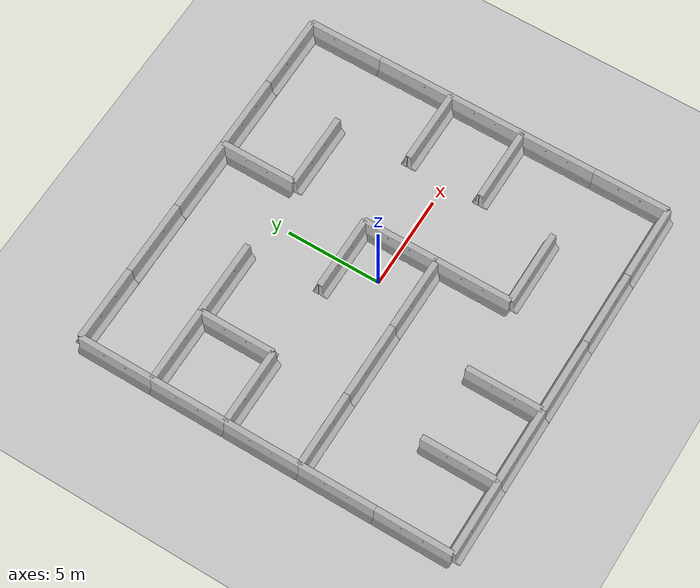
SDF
<sdf version="1.7">
 <world name="default">
  <light name="sun" type="directional">
   <pose>0 0 10 0 -0 0</pose>
   <diffuse>0.8 0.8 0.8 1</diffuse>
   <specular>0.2 0.2 0.2 1</specular>
   <attenuation>
    <range>1000</range>
    <constant>0.9</constant>
    <linear>0.01</linear>
    <quadratic>0.001</quadratic>
   </attenuation>
   <direction>-0.5 0.1 -0.9</direction>
   <spot><inner_angle>0</inner_angle><outer_angle>0</outer_angle><falloff>0</falloff></spot>
  </light>
  <model name="ground_plane">
   <static>1</static>
   <link name="link">
    <collision name="collision">
     <geometry><plane><normal>0 0 1</normal><size>100 100</size></plane></geometry>
     <surface><friction><ode><mu>100</mu><mu2>50</mu2></ode></friction></surface>
    </collision>
    <visual name="visual">
     <cast_shadows>0</cast_shadows>
     <geometry><plane><normal>0 0 1</normal><size>100 100</size></plane></geometry>
     <material>
      <script><uri>file://media/materials/scripts/gazebo.material</uri><name>Gazebo/Grey</name></script>
     </material>
    </visual>
   </link>
  </model>
  <gravity>0 0 -9.8</gravity>
  <magnetic_field>6e-06 2.3e-05 -4.2e-05</magnetic_field>
  <atmosphere type="adiabatic"/>
  <physics type="ode">
   <max_step_size>0.001</max_step_size>
   <real_time_factor>1</real_time_factor>
   <real_time_update_rate>1000</real_time_update_rate>
  </physics>
  <scene><ambient>0.4 0.4 0.4 1</ambient><background>0.7 0.7 0.7 1</background><shadows>1</shadows></scene>
  <spherical_coordinates>
   <surface_model>EARTH_WGS84</surface_model>
   <latitude_deg>0</latitude_deg>
   <longitude_deg>0</longitude_deg>
   <elevation>0</elevation>
   <heading_deg>0</heading_deg>
  </spherical_coordinates>
  <model name="jersey_barrier_clone_0">
   <static>1</static>
   <link name="link">
    <visual name="visual">
     <geometry><mesh><uri>model://jersey_barrier/meshes/jersey_barrier.dae</uri></mesh></geometry>
    </visual>
    <collision name="upright">
     <pose>0 0 0.5715 0 -0 0</pose>
     <geometry><box><size>4.06542 0.3063 1.143</size></box></geometry>
    </collision>
    <collision name="base">
     <pose>0 0 0.032258 0 -0 0</pose>
     <geometry><box><size>4.06542 0.8107 0.064516</size></box></geometry>
    </collision>
    <collision name="base2">
     <pose>0 0 0.1 0 -0 0</pose>
     <geometry><box><size>4.06542 0.65 0.1</size></box></geometry>
    </collision>
    <collision name="base3">
     <pose>0 0 0.2 0 -0 0</pose>
     <geometry><box><size>4.06542 0.5 0.1</size></box></geometry>
    </collision>
    <collision name="left-angle">
     <pose>0 -0.224 0.2401 0.9 -0 0</pose>
     <geometry><box><size>4.06542 0.5 0.064516</size></box></geometry>
    </collision>
    <collision name="right-angle">
     <pose>0 0.224 0.2401 -0.9 0 0</pose>
     <geometry><box><size>4.06542 0.5 0.064516</size></box></geometry>
    </collision>
   </link>
   <pose>8 -2 0 0 -0 0</pose>
  </model>
  <model name="jersey_barrier_clone_clone_0">
   <static>1</static>
   <link name="link">
    <visual name="visual">
     <geometry><mesh><uri>model://jersey_barrier/meshes/jersey_barrier.dae</uri></mesh></geometry>
    </visual>
    <collision name="upright">
     <pose>0 0 0.5715 0 -0 0</pose>
     <geometry><box><size>4.06542 0.3063 1.143</size></box></geometry>
    </collision>
    <collision name="base">
     <pose>0 0 0.032258 0 -0 0</pose>
     <geometry><box><size>4.06542 0.8107 0.064516</size></box></geometry>
    </collision>
    <collision name="base2">
     <pose>0 0 0.1 0 -0 0</pose>
     <geometry><box><size>4.06542 0.65 0.1</size></box></geometry>
    </collision>
    <collision name="base3">
     <pose>0 0 0.2 0 -0 0</pose>
     <geometry><box><size>4.06542 0.5 0.1</size></box></geometry>
    </collision>
    <collision name="left-angle">
     <pose>0 -0.224 0.2401 0.9 -0 0</pose>
     <geometry><box><size>4.06542 0.5 0.064516</size></box></geometry>
    </collision>
    <collision name="right-angle">
     <pose>0 0.224 0.2401 -0.9 0 0</pose>
     <geometry><box><size>4.06542 0.5 0.064516</size></box></geometry>
    </collision>
   </link>
   <pose>0 -2 0 0 -0 0</pose>
  </model>
  <model name="jersey_barrier_clone_clone_clone_1">
   <static>1</static>
   <link name="link">
    <visual name="visual">
     <geometry><mesh><uri>model://jersey_barrier/meshes/jersey_barrier.dae</uri></mesh></geometry>
    </visual>
    <collision name="upright">
     <pose>0 0 0.5715 0 -0 0</pose>
     <geometry><box><size>4.06542 0.3063 1.143</size></box></geometry>
    </collision>
    <collision name="base">
     <pose>0 0 0.032258 0 -0 0</pose>
     <geometry><box><size>4.06542 0.8107 0.064516</size></box></geometry>
    </collision>
    <collision name="base2">
     <pose>0 0 0.1 0 -0 0</pose>
     <geometry><box><size>4.06542 0.65 0.1</size></box></geometry>
    </collision>
    <collision name="base3">
     <pose>0 0 0.2 0 -0 0</pose>
     <geometry><box><size>4.06542 0.5 0.1</size></box></geometry>
    </collision>
    <collision name="left-angle">
     <pose>0 -0.224 0.2401 0.9 -0 0</pose>
     <geometry><box><size>4.06542 0.5 0.064516</size></box></geometry>
    </collision>
    <collision name="right-angle">
     <pose>0 0.224 0.2401 -0.9 0 0</pose>
     <geometry><box><size>4.06542 0.5 0.064516</size></box></geometry>
    </collision>
   </link>
   <pose>10 0 0 0 -0 1.5708</pose>
  </model>
  <model name="jersey_barrier_clone_clone_clone_2">
   <static>1</static>
   <link name="link">
    <visual name="visual">
     <geometry><mesh><uri>model://jersey_barrier/meshes/jersey_barrier.dae</uri></mesh></geometry>
    </visual>
    <collision name="upright">
     <pose>0 0 0.5715 0 -0 0</pose>
     <geometry><box><size>4.06542 0.3063 1.143</size></box></geometry>
    </collision>
    <collision name="base">
     <pose>0 0 0.032258 0 -0 0</pose>
     <geometry><box><size>4.06542 0.8107 0.064516</size></box></geometry>
    </collision>
    <collision name="base2">
     <pose>0 0 0.1 0 -0 0</pose>
     <geometry><box><size>4.06542 0.65 0.1</size></box></geometry>
    </collision>
    <collision name="base3">
     <pose>0 0 0.2 0 -0 0</pose>
     <geometry><box><size>4.06542 0.5 0.1</size></box></geometry>
    </collision>
    <collision name="left-angle">
     <pose>0 -0.224 0.2401 0.9 -0 0</pose>
     <geometry><box><size>4.06542 0.5 0.064516</size></box></geometry>
    </collision>
    <collision name="right-angle">
     <pose>0 0.224 0.2401 -0.9 0 0</pose>
     <geometry><box><size>4.06542 0.5 0.064516</size></box></geometry>
    </collision>
   </link>
   <pose>10 4 0 0 -0 1.5708</pose>
  </model>
  <model name="jersey_barrier_clone_clone_clone_3">
   <static>1</static>
   <link name="link">
    <visual name="visual">
     <geometry><mesh><uri>model://jersey_barrier/meshes/jersey_barrier.dae</uri></mesh></geometry>
    </visual>
    <collision name="upright">
     <pose>0 0 0.5715 0 -0 0</pose>
     <geometry><box><size>4.06542 0.3063 1.143</size></box></geometry>
    </collision>
    <collision name="base">
     <pose>0 0 0.032258 0 -0 0</pose>
     <geometry><box><size>4.06542 0.8107 0.064516</size></box></geometry>
    </collision>
    <collision name="base2">
     <pose>0 0 0.1 0 -0 0</pose>
     <geometry><box><size>4.06542 0.65 0.1</size></box></geometry>
    </collision>
    <collision name="base3">
     <pose>0 0 0.2 0 -0 0</pose>
     <geometry><box><size>4.06542 0.5 0.1</size></box></geometry>
    </collision>
    <collision name="left-angle">
     <pose>0 -0.224 0.2401 0.9 -0 0</pose>
     <geometry><box><size>4.06542 0.5 0.064516</size></box></geometry>
    </collision>
    <collision name="right-angle">
     <pose>0 0.224 0.2401 -0.9 0 0</pose>
     <geometry><box><size>4.06542 0.5 0.064516</size></box></geometry>
    </collision>
   </link>
   <pose>10 8 0 0 -0 1.5708</pose>
  </model>
  <model name="jersey_barrier_clone_3_clone">
   <static>1</static>
   <link name="link">
    <visual name="visual">
     <geometry><mesh><uri>model://jersey_barrier/meshes/jersey_barrier.dae</uri></mesh></geometry>
    </visual>
    <collision name="upright">
     <pose>0 0 0.5715 0 -0 0</pose>
     <geometry><box><size>4.06542 0.3063 1.143</size></box></geometry>
    </collision>
    <collision name="base">
     <pose>0 0 0.032258 0 -0 0</pose>
     <geometry><box><size>4.06542 0.8107 0.064516</size></box></geometry>
    </collision>
    <collision name="base2">
     <pose>0 0 0.1 0 -0 0</pose>
     <geometry><box><size>4.06542 0.65 0.1</size></box></geometry>
    </collision>
    <collision name="base3">
     <pose>0 0 0.2 0 -0 0</pose>
     <geometry><box><size>4.06542 0.5 0.1</size></box></geometry>
    </collision>
    <collision name="left-angle">
     <pose>0 -0.224 0.2401 0.9 -0 0</pose>
     <geometry><box><size>4.06542 0.5 0.064516</size></box></geometry>
    </collision>
    <collision name="right-angle">
     <pose>0 0.224 0.2401 -0.9 0 0</pose>
     <geometry><box><size>4.06542 0.5 0.064516</size></box></geometry>
    </collision>
   </link>
   <pose>0 10 0 0 -0 0</pose>
  </model>
  <model name="jersey_barrier_clone_3_clone_0">
   <static>1</static>
   <link name="link">
    <visual name="visual">
     <geometry><mesh><uri>model://jersey_barrier/meshes/jersey_barrier.dae</uri></mesh></geometry>
    </visual>
    <collision name="upright">
     <pose>0 0 0.5715 0 -0 0</pose>
     <geometry><box><size>4.06542 0.3063 1.143</size></box></geometry>
    </collision>
    <collision name="base">
     <pose>0 0 0.032258 0 -0 0</pose>
     <geometry><box><size>4.06542 0.8107 0.064516</size></box></geometry>
    </collision>
    <collision name="base2">
     <pose>0 0 0.1 0 -0 0</pose>
     <geometry><box><size>4.06542 0.65 0.1</size></box></geometry>
    </collision>
    <collision name="base3">
     <pose>0 0 0.2 0 -0 0</pose>
     <geometry><box><size>4.06542 0.5 0.1</size></box></geometry>
    </collision>
    <collision name="left-angle">
     <pose>0 -0.224 0.2401 0.9 -0 0</pose>
     <geometry><box><size>4.06542 0.5 0.064516</size></box></geometry>
    </collision>
    <collision name="right-angle">
     <pose>0 0.224 0.2401 -0.9 0 0</pose>
     <geometry><box><size>4.06542 0.5 0.064516</size></box></geometry>
    </collision>
   </link>
   <pose>4 10 0 0 -0 0</pose>
  </model>
  <model name="jersey_barrier_clone_3_clone_1">
   <static>1</static>
   <link name="link">
    <visual name="visual">
     <geometry><mesh><uri>model://jersey_barrier/meshes/jersey_barrier.dae</uri></mesh></geometry>
    </visual>
    <collision name="upright">
     <pose>0 0 0.5715 0 -0 0</pose>
     <geometry><box><size>4.06542 0.3063 1.143</size></box></geometry>
    </collision>
    <collision name="base">
     <pose>0 0 0.032258 0 -0 0</pose>
     <geometry><box><size>4.06542 0.8107 0.064516</size></box></geometry>
    </collision>
    <collision name="base2">
     <pose>0 0 0.1 0 -0 0</pose>
     <geometry><box><size>4.06542 0.65 0.1</size></box></geometry>
    </collision>
    <collision name="base3">
     <pose>0 0 0.2 0 -0 0</pose>
     <geometry><box><size>4.06542 0.5 0.1</size></box></geometry>
    </collision>
    <collision name="left-angle">
     <pose>0 -0.224 0.2401 0.9 -0 0</pose>
     <geometry><box><size>4.06542 0.5 0.064516</size></box></geometry>
    </collision>
    <collision name="right-angle">
     <pose>0 0.224 0.2401 -0.9 0 0</pose>
     <geometry><box><size>4.06542 0.5 0.064516</size></box></geometry>
    </collision>
   </link>
   <pose>8 10 0 0 -0 0</pose>
  </model>
  <model name="jersey_barrier_clone_clone_0_clone">
   <static>1</static>
   <link name="link">
    <visual name="visual">
     <geometry><mesh><uri>model://jersey_barrier/meshes/jersey_barrier.dae</uri></mesh></geometry>
    </visual>
    <collision name="upright">
     <pose>0 0 0.5715 0 -0 0</pose>
     <geometry><box><size>4.06542 0.3063 1.143</size></box></geometry>
    </collision>
    <collision name="base">
     <pose>0 0 0.032258 0 -0 0</pose>
     <geometry><box><size>4.06542 0.8107 0.064516</size></box></geometry>
    </collision>
    <collision name="base2">
     <pose>0 0 0.1 0 -0 0</pose>
     <geometry><box><size>4.06542 0.65 0.1</size></box></geometry>
    </collision>
    <collision name="base3">
     <pose>0 0 0.2 0 -0 0</pose>
     <geometry><box><size>4.06542 0.5 0.1</size></box></geometry>
    </collision>
    <collision name="left-angle">
     <pose>0 -0.224 0.2401 0.9 -0 0</pose>
     <geometry><box><size>4.06542 0.5 0.064516</size></box></geometry>
    </collision>
    <collision name="right-angle">
     <pose>0 0.224 0.2401 -0.9 0 0</pose>
     <geometry><box><size>4.06542 0.5 0.064516</size></box></geometry>
    </collision>
   </link>
   <pose>0 2 0 0 -0 0</pose>
  </model>
  <model name="jersey_barrier_clone_clone_clone_4">
   <static>1</static>
   <link name="link">
    <visual name="visual">
     <geometry><mesh><uri>model://jersey_barrier/meshes/jersey_barrier.dae</uri></mesh></geometry>
    </visual>
    <collision name="upright">
     <pose>0 0 0.5715 0 -0 0</pose>
     <geometry><box><size>4.06542 0.3063 1.143</size></box></geometry>
    </collision>
    <collision name="base">
     <pose>0 0 0.032258 0 -0 0</pose>
     <geometry><box><size>4.06542 0.8107 0.064516</size></box></geometry>
    </collision>
    <collision name="base2">
     <pose>0 0 0.1 0 -0 0</pose>
     <geometry><box><size>4.06542 0.65 0.1</size></box></geometry>
    </collision>
    <collision name="base3">
     <pose>0 0 0.2 0 -0 0</pose>
     <geometry><box><size>4.06542 0.5 0.1</size></box></geometry>
    </collision>
    <collision name="left-angle">
     <pose>0 -0.224 0.2401 0.9 -0 0</pose>
     <geometry><box><size>4.06542 0.5 0.064516</size></box></geometry>
    </collision>
    <collision name="right-angle">
     <pose>0 0.224 0.2401 -0.9 0 0</pose>
     <geometry><box><size>4.06542 0.5 0.064516</size></box></geometry>
    </collision>
   </link>
   <pose>2 0 0 0 -0 1.5708</pose>
  </model>
  <model name="jersey_barrier_clone_clone_clone_8">
   <static>1</static>
   <link name="link">
    <visual name="visual">
     <geometry><mesh><uri>model://jersey_barrier/meshes/jersey_barrier.dae</uri></mesh></geometry>
    </visual>
    <collision name="upright">
     <pose>0 0 0.5715 0 -0 0</pose>
     <geometry><box><size>4.06542 0.3063 1.143</size></box></geometry>
    </collision>
    <collision name="base">
     <pose>0 0 0.032258 0 -0 0</pose>
     <geometry><box><size>4.06542 0.8107 0.064516</size></box></geometry>
    </collision>
    <collision name="base2">
     <pose>0 0 0.1 0 -0 0</pose>
     <geometry><box><size>4.06542 0.65 0.1</size></box></geometry>
    </collision>
    <collision name="base3">
     <pose>0 0 0.2 0 -0 0</pose>
     <geometry><box><size>4.06542 0.5 0.1</size></box></geometry>
    </collision>
    <collision name="left-angle">
     <pose>0 -0.224 0.2401 0.9 -0 0</pose>
     <geometry><box><size>4.06542 0.5 0.064516</size></box></geometry>
    </collision>
    <collision name="right-angle">
     <pose>0 0.224 0.2401 -0.9 0 0</pose>
     <geometry><box><size>4.06542 0.5 0.064516</size></box></geometry>
    </collision>
   </link>
   <pose>2 8 0 0 -0 1.5708</pose>
  </model>
  <model name="jersey_barrier_clone_clone_0_clone_clone_0">
   <static>1</static>
   <link name="link">
    <visual name="visual">
     <geometry><mesh><uri>model://jersey_barrier/meshes/jersey_barrier.dae</uri></mesh></geometry>
    </visual>
    <collision name="upright">
     <pose>0 0 0.5715 0 -0 0</pose>
     <geometry><box><size>4.06542 0.3063 1.143</size></box></geometry>
    </collision>
    <collision name="base">
     <pose>0 0 0.032258 0 -0 0</pose>
     <geometry><box><size>4.06542 0.8107 0.064516</size></box></geometry>
    </collision>
    <collision name="base2">
     <pose>0 0 0.1 0 -0 0</pose>
     <geometry><box><size>4.06542 0.65 0.1</size></box></geometry>
    </collision>
    <collision name="base3">
     <pose>0 0 0.2 0 -0 0</pose>
     <geometry><box><size>4.06542 0.5 0.1</size></box></geometry>
    </collision>
    <collision name="left-angle">
     <pose>0 -0.224 0.2401 0.9 -0 0</pose>
     <geometry><box><size>4.06542 0.5 0.064516</size></box></geometry>
    </collision>
    <collision name="right-angle">
     <pose>0 0.224 0.2401 -0.9 0 0</pose>
     <geometry><box><size>4.06542 0.5 0.064516</size></box></geometry>
    </collision>
   </link>
   <pose>4 6 0 0 -0 0</pose>
  </model>
  <model name="jersey_barrier_clone_clone_0_clone_clone_3">
   <static>1</static>
   <link name="link">
    <visual name="visual">
     <geometry><mesh><uri>model://jersey_barrier/meshes/jersey_barrier.dae</uri></mesh></geometry>
    </visual>
    <collision name="upright">
     <pose>0 0 0.5715 0 -0 0</pose>
     <geometry><box><size>4.06542 0.3063 1.143</size></box></geometry>
    </collision>
    <collision name="base">
     <pose>0 0 0.032258 0 -0 0</pose>
     <geometry><box><size>4.06542 0.8107 0.064516</size></box></geometry>
    </collision>
    <collision name="base2">
     <pose>0 0 0.1 0 -0 0</pose>
     <geometry><box><size>4.06542 0.65 0.1</size></box></geometry>
    </collision>
    <collision name="base3">
     <pose>0 0 0.2 0 -0 0</pose>
     <geometry><box><size>4.06542 0.5 0.1</size></box></geometry>
    </collision>
    <collision name="left-angle">
     <pose>0 -0.224 0.2401 0.9 -0 0</pose>
     <geometry><box><size>4.06542 0.5 0.064516</size></box></geometry>
    </collision>
    <collision name="right-angle">
     <pose>0 0.224 0.2401 -0.9 0 0</pose>
     <geometry><box><size>4.06542 0.5 0.064516</size></box></geometry>
    </collision>
   </link>
   <pose>8 2 0 0 -0 0</pose>
  </model>
  <model name="jersey_barrier_clone_clone_0_clone_clone_5">
   <static>1</static>
   <link name="link">
    <visual name="visual">
     <geometry><mesh><uri>model://jersey_barrier/meshes/jersey_barrier.dae</uri></mesh></geometry>
    </visual>
    <collision name="upright">
     <pose>0 0 0.5715 0 -0 0</pose>
     <geometry><box><size>4.06542 0.3063 1.143</size></box></geometry>
    </collision>
    <collision name="base">
     <pose>0 0 0.032258 0 -0 0</pose>
     <geometry><box><size>4.06542 0.8107 0.064516</size></box></geometry>
    </collision>
    <collision name="base2">
     <pose>0 0 0.1 0 -0 0</pose>
     <geometry><box><size>4.06542 0.65 0.1</size></box></geometry>
    </collision>
    <collision name="base3">
     <pose>0 0 0.2 0 -0 0</pose>
     <geometry><box><size>4.06542 0.5 0.1</size></box></geometry>
    </collision>
    <collision name="left-angle">
     <pose>0 -0.224 0.2401 0.9 -0 0</pose>
     <geometry><box><size>4.06542 0.5 0.064516</size></box></geometry>
    </collision>
    <collision name="right-angle">
     <pose>0 0.224 0.2401 -0.9 0 0</pose>
     <geometry><box><size>4.06542 0.5 0.064516</size></box></geometry>
    </collision>
   </link>
   <pose>-4 -2 0 0 -0 0</pose>
  </model>
  <model name="jersey_barrier_clone_clone_0_clone_clone_6">
   <static>1</static>
   <link name="link">
    <visual name="visual">
     <geometry><mesh><uri>model://jersey_barrier/meshes/jersey_barrier.dae</uri></mesh></geometry>
    </visual>
    <collision name="upright">
     <pose>0 0 0.5715 0 -0 0</pose>
     <geometry><box><size>4.06542 0.3063 1.143</size></box></geometry>
    </collision>
    <collision name="base">
     <pose>0 0 0.032258 0 -0 0</pose>
     <geometry><box><size>4.06542 0.8107 0.064516</size></box></geometry>
    </collision>
    <collision name="base2">
     <pose>0 0 0.1 0 -0 0</pose>
     <geometry><box><size>4.06542 0.65 0.1</size></box></geometry>
    </collision>
    <collision name="base3">
     <pose>0 0 0.2 0 -0 0</pose>
     <geometry><box><size>4.06542 0.5 0.1</size></box></geometry>
    </collision>
    <collision name="left-angle">
     <pose>0 -0.224 0.2401 0.9 -0 0</pose>
     <geometry><box><size>4.06542 0.5 0.064516</size></box></geometry>
    </collision>
    <collision name="right-angle">
     <pose>0 0.224 0.2401 -0.9 0 0</pose>
     <geometry><box><size>4.06542 0.5 0.064516</size></box></geometry>
    </collision>
   </link>
   <pose>-8 -2 0 0 -0 0</pose>
  </model>
  <model name="jersey_barrier_clone_clone_0_clone_clone_7">
   <static>1</static>
   <link name="link">
    <visual name="visual">
     <geometry><mesh><uri>model://jersey_barrier/meshes/jersey_barrier.dae</uri></mesh></geometry>
    </visual>
    <collision name="upright">
     <pose>0 0 0.5715 0 -0 0</pose>
     <geometry><box><size>4.06542 0.3063 1.143</size></box></geometry>
    </collision>
    <collision name="base">
     <pose>0 0 0.032258 0 -0 0</pose>
     <geometry><box><size>4.06542 0.8107 0.064516</size></box></geometry>
    </collision>
    <collision name="base2">
     <pose>0 0 0.1 0 -0 0</pose>
     <geometry><box><size>4.06542 0.65 0.1</size></box></geometry>
    </collision>
    <collision name="base3">
     <pose>0 0 0.2 0 -0 0</pose>
     <geometry><box><size>4.06542 0.5 0.1</size></box></geometry>
    </collision>
    <collision name="left-angle">
     <pose>0 -0.224 0.2401 0.9 -0 0</pose>
     <geometry><box><size>4.06542 0.5 0.064516</size></box></geometry>
    </collision>
    <collision name="right-angle">
     <pose>0 0.224 0.2401 -0.9 0 0</pose>
     <geometry><box><size>4.06542 0.5 0.064516</size></box></geometry>
    </collision>
   </link>
   <pose>-8 2 0 0 -0 0</pose>
  </model>
  <model name="jersey_barrier_clone_clone_0_clone_clone_8">
   <static>1</static>
   <link name="link">
    <visual name="visual">
     <geometry><mesh><uri>model://jersey_barrier/meshes/jersey_barrier.dae</uri></mesh></geometry>
    </visual>
    <collision name="upright">
     <pose>0 0 0.5715 0 -0 0</pose>
     <geometry><box><size>4.06542 0.3063 1.143</size></box></geometry>
    </collision>
    <collision name="base">
     <pose>0 0 0.032258 0 -0 0</pose>
     <geometry><box><size>4.06542 0.8107 0.064516</size></box></geometry>
    </collision>
    <collision name="base2">
     <pose>0 0 0.1 0 -0 0</pose>
     <geometry><box><size>4.06542 0.65 0.1</size></box></geometry>
    </collision>
    <collision name="base3">
     <pose>0 0 0.2 0 -0 0</pose>
     <geometry><box><size>4.06542 0.5 0.1</size></box></geometry>
    </collision>
    <collision name="left-angle">
     <pose>0 -0.224 0.2401 0.9 -0 0</pose>
     <geometry><box><size>4.06542 0.5 0.064516</size></box></geometry>
    </collision>
    <collision name="right-angle">
     <pose>0 0.224 0.2401 -0.9 0 0</pose>
     <geometry><box><size>4.06542 0.5 0.064516</size></box></geometry>
    </collision>
   </link>
   <pose>-4 6 0 0 -0 0</pose>
  </model>
  <model name="jersey_barrier_clone_clone_0_clone_clone_9">
   <static>1</static>
   <link name="link">
    <visual name="visual">
     <geometry><mesh><uri>model://jersey_barrier/meshes/jersey_barrier.dae</uri></mesh></geometry>
    </visual>
    <collision name="upright">
     <pose>0 0 0.5715 0 -0 0</pose>
     <geometry><box><size>4.06542 0.3063 1.143</size></box></geometry>
    </collision>
    <collision name="base">
     <pose>0 0 0.032258 0 -0 0</pose>
     <geometry><box><size>4.06542 0.8107 0.064516</size></box></geometry>
    </collision>
    <collision name="base2">
     <pose>0 0 0.1 0 -0 0</pose>
     <geometry><box><size>4.06542 0.65 0.1</size></box></geometry>
    </collision>
    <collision name="base3">
     <pose>0 0 0.2 0 -0 0</pose>
     <geometry><box><size>4.06542 0.5 0.1</size></box></geometry>
    </collision>
    <collision name="left-angle">
     <pose>0 -0.224 0.2401 0.9 -0 0</pose>
     <geometry><box><size>4.06542 0.5 0.064516</size></box></geometry>
    </collision>
    <collision name="right-angle">
     <pose>0 0.224 0.2401 -0.9 0 0</pose>
     <geometry><box><size>4.06542 0.5 0.064516</size></box></geometry>
    </collision>
   </link>
   <pose>-8 6 0 0 -0 0</pose>
  </model>
  <model name="jersey_barrier_clone_clone_0_clone_clone_10">
   <static>1</static>
   <link name="link">
    <visual name="visual">
     <geometry><mesh><uri>model://jersey_barrier/meshes/jersey_barrier.dae</uri></mesh></geometry>
    </visual>
    <collision name="upright">
     <pose>0 0 0.5715 0 -0 0</pose>
     <geometry><box><size>4.06542 0.3063 1.143</size></box></geometry>
    </collision>
    <collision name="base">
     <pose>0 0 0.032258 0 -0 0</pose>
     <geometry><box><size>4.06542 0.8107 0.064516</size></box></geometry>
    </collision>
    <collision name="base2">
     <pose>0 0 0.1 0 -0 0</pose>
     <geometry><box><size>4.06542 0.65 0.1</size></box></geometry>
    </collision>
    <collision name="base3">
     <pose>0 0 0.2 0 -0 0</pose>
     <geometry><box><size>4.06542 0.5 0.1</size></box></geometry>
    </collision>
    <collision name="left-angle">
     <pose>0 -0.224 0.2401 0.9 -0 0</pose>
     <geometry><box><size>4.06542 0.5 0.064516</size></box></geometry>
    </collision>
    <collision name="right-angle">
     <pose>0 0.224 0.2401 -0.9 0 0</pose>
     <geometry><box><size>4.06542 0.5 0.064516</size></box></geometry>
    </collision>
   </link>
   <pose>-4 10 0 0 -0 0</pose>
  </model>
  <model name="jersey_barrier_clone_clone_0_clone_clone_11">
   <static>1</static>
   <link name="link">
    <visual name="visual">
     <geometry><mesh><uri>model://jersey_barrier/meshes/jersey_barrier.dae</uri></mesh></geometry>
    </visual>
    <collision name="upright">
     <pose>0 0 0.5715 0 -0 0</pose>
     <geometry><box><size>4.06542 0.3063 1.143</size></box></geometry>
    </collision>
    <collision name="base">
     <pose>0 0 0.032258 0 -0 0</pose>
     <geometry><box><size>4.06542 0.8107 0.064516</size></box></geometry>
    </collision>
    <collision name="base2">
     <pose>0 0 0.1 0 -0 0</pose>
     <geometry><box><size>4.06542 0.65 0.1</size></box></geometry>
    </collision>
    <collision name="base3">
     <pose>0 0 0.2 0 -0 0</pose>
     <geometry><box><size>4.06542 0.5 0.1</size></box></geometry>
    </collision>
    <collision name="left-angle">
     <pose>0 -0.224 0.2401 0.9 -0 0</pose>
     <geometry><box><size>4.06542 0.5 0.064516</size></box></geometry>
    </collision>
    <collision name="right-angle">
     <pose>0 0.224 0.2401 -0.9 0 0</pose>
     <geometry><box><size>4.06542 0.5 0.064516</size></box></geometry>
    </collision>
   </link>
   <pose>-8 10 0 0 -0 0</pose>
  </model>
  <model name="jersey_barrier_clone_clone_clone_14">
   <static>1</static>
   <link name="link">
    <visual name="visual">
     <geometry><mesh><uri>model://jersey_barrier/meshes/jersey_barrier.dae</uri></mesh></geometry>
    </visual>
    <collision name="upright">
     <pose>0 0 0.5715 0 -0 0</pose>
     <geometry><box><size>4.06542 0.3063 1.143</size></box></geometry>
    </collision>
    <collision name="base">
     <pose>0 0 0.032258 0 -0 0</pose>
     <geometry><box><size>4.06542 0.8107 0.064516</size></box></geometry>
    </collision>
    <collision name="base2">
     <pose>0 0 0.1 0 -0 0</pose>
     <geometry><box><size>4.06542 0.65 0.1</size></box></geometry>
    </collision>
    <collision name="base3">
     <pose>0 0 0.2 0 -0 0</pose>
     <geometry><box><size>4.06542 0.5 0.1</size></box></geometry>
    </collision>
    <collision name="left-angle">
     <pose>0 -0.224 0.2401 0.9 -0 0</pose>
     <geometry><box><size>4.06542 0.5 0.064516</size></box></geometry>
    </collision>
    <collision name="right-angle">
     <pose>0 0.224 0.2401 -0.9 0 0</pose>
     <geometry><box><size>4.06542 0.5 0.064516</size></box></geometry>
    </collision>
   </link>
   <pose>10 -4 0 0 -0 1.5708</pose>
  </model>
  <model name="jersey_barrier_clone_clone_clone_15">
   <static>1</static>
   <link name="link">
    <visual name="visual">
     <geometry><mesh><uri>model://jersey_barrier/meshes/jersey_barrier.dae</uri></mesh></geometry>
    </visual>
    <collision name="upright">
     <pose>0 0 0.5715 0 -0 0</pose>
     <geometry><box><size>4.06542 0.3063 1.143</size></box></geometry>
    </collision>
    <collision name="base">
     <pose>0 0 0.032258 0 -0 0</pose>
     <geometry><box><size>4.06542 0.8107 0.064516</size></box></geometry>
    </collision>
    <collision name="base2">
     <pose>0 0 0.1 0 -0 0</pose>
     <geometry><box><size>4.06542 0.65 0.1</size></box></geometry>
    </collision>
    <collision name="base3">
     <pose>0 0 0.2 0 -0 0</pose>
     <geometry><box><size>4.06542 0.5 0.1</size></box></geometry>
    </collision>
    <collision name="left-angle">
     <pose>0 -0.224 0.2401 0.9 -0 0</pose>
     <geometry><box><size>4.06542 0.5 0.064516</size></box></geometry>
    </collision>
    <collision name="right-angle">
     <pose>0 0.224 0.2401 -0.9 0 0</pose>
     <geometry><box><size>4.06542 0.5 0.064516</size></box></geometry>
    </collision>
   </link>
   <pose>10 -8 0 0 -0 1.5708</pose>
  </model>
  <model name="jersey_barrier_clone_clone_clone_19">
   <static>1</static>
   <link name="link">
    <visual name="visual">
     <geometry><mesh><uri>model://jersey_barrier/meshes/jersey_barrier.dae</uri></mesh></geometry>
    </visual>
    <collision name="upright">
     <pose>0 0 0.5715 0 -0 0</pose>
     <geometry><box><size>4.06542 0.3063 1.143</size></box></geometry>
    </collision>
    <collision name="base">
     <pose>0 0 0.032258 0 -0 0</pose>
     <geometry><box><size>4.06542 0.8107 0.064516</size></box></geometry>
    </collision>
    <collision name="base2">
     <pose>0 0 0.1 0 -0 0</pose>
     <geometry><box><size>4.06542 0.65 0.1</size></box></geometry>
    </collision>
    <collision name="base3">
     <pose>0 0 0.2 0 -0 0</pose>
     <geometry><box><size>4.06542 0.5 0.1</size></box></geometry>
    </collision>
    <collision name="left-angle">
     <pose>0 -0.224 0.2401 0.9 -0 0</pose>
     <geometry><box><size>4.06542 0.5 0.064516</size></box></geometry>
    </collision>
    <collision name="right-angle">
     <pose>0 0.224 0.2401 -0.9 0 0</pose>
     <geometry><box><size>4.06542 0.5 0.064516</size></box></geometry>
    </collision>
   </link>
   <pose>-6 -8 0 0 -0 1.5708</pose>
  </model>
  <model name="jersey_barrier_clone_clone_clone_20">
   <static>1</static>
   <link name="link">
    <visual name="visual">
     <geometry><mesh><uri>model://jersey_barrier/meshes/jersey_barrier.dae</uri></mesh></geometry>
    </visual>
    <collision name="upright">
     <pose>0 0 0.5715 0 -0 0</pose>
     <geometry><box><size>4.06542 0.3063 1.143</size></box></geometry>
    </collision>
    <collision name="base">
     <pose>0 0 0.032258 0 -0 0</pose>
     <geometry><box><size>4.06542 0.8107 0.064516</size></box></geometry>
    </collision>
    <collision name="base2">
     <pose>0 0 0.1 0 -0 0</pose>
     <geometry><box><size>4.06542 0.65 0.1</size></box></geometry>
    </collision>
    <collision name="base3">
     <pose>0 0 0.2 0 -0 0</pose>
     <geometry><box><size>4.06542 0.5 0.1</size></box></geometry>
    </collision>
    <collision name="left-angle">
     <pose>0 -0.224 0.2401 0.9 -0 0</pose>
     <geometry><box><size>4.06542 0.5 0.064516</size></box></geometry>
    </collision>
    <collision name="right-angle">
     <pose>0 0.224 0.2401 -0.9 0 0</pose>
     <geometry><box><size>4.06542 0.5 0.064516</size></box></geometry>
    </collision>
   </link>
   <pose>-10 -4 0 0 -0 1.5708</pose>
  </model>
  <model name="jersey_barrier_clone_clone_clone_21">
   <static>1</static>
   <link name="link">
    <visual name="visual">
     <geometry><mesh><uri>model://jersey_barrier/meshes/jersey_barrier.dae</uri></mesh></geometry>
    </visual>
    <collision name="upright">
     <pose>0 0 0.5715 0 -0 0</pose>
     <geometry><box><size>4.06542 0.3063 1.143</size></box></geometry>
    </collision>
    <collision name="base">
     <pose>0 0 0.032258 0 -0 0</pose>
     <geometry><box><size>4.06542 0.8107 0.064516</size></box></geometry>
    </collision>
    <collision name="base2">
     <pose>0 0 0.1 0 -0 0</pose>
     <geometry><box><size>4.06542 0.65 0.1</size></box></geometry>
    </collision>
    <collision name="base3">
     <pose>0 0 0.2 0 -0 0</pose>
     <geometry><box><size>4.06542 0.5 0.1</size></box></geometry>
    </collision>
    <collision name="left-angle">
     <pose>0 -0.224 0.2401 0.9 -0 0</pose>
     <geometry><box><size>4.06542 0.5 0.064516</size></box></geometry>
    </collision>
    <collision name="right-angle">
     <pose>0 0.224 0.2401 -0.9 0 0</pose>
     <geometry><box><size>4.06542 0.5 0.064516</size></box></geometry>
    </collision>
   </link>
   <pose>-10 -8 0 0 -0 1.5708</pose>
  </model>
  <model name="jersey_barrier_clone_clone_clone_22">
   <static>1</static>
   <link name="link">
    <visual name="visual">
     <geometry><mesh><uri>model://jersey_barrier/meshes/jersey_barrier.dae</uri></mesh></geometry>
    </visual>
    <collision name="upright">
     <pose>0 0 0.5715 0 -0 0</pose>
     <geometry><box><size>4.06542 0.3063 1.143</size></box></geometry>
    </collision>
    <collision name="base">
     <pose>0 0 0.032258 0 -0 0</pose>
     <geometry><box><size>4.06542 0.8107 0.064516</size></box></geometry>
    </collision>
    <collision name="base2">
     <pose>0 0 0.1 0 -0 0</pose>
     <geometry><box><size>4.06542 0.65 0.1</size></box></geometry>
    </collision>
    <collision name="base3">
     <pose>0 0 0.2 0 -0 0</pose>
     <geometry><box><size>4.06542 0.5 0.1</size></box></geometry>
    </collision>
    <collision name="left-angle">
     <pose>0 -0.224 0.2401 0.9 -0 0</pose>
     <geometry><box><size>4.06542 0.5 0.064516</size></box></geometry>
    </collision>
    <collision name="right-angle">
     <pose>0 0.224 0.2401 -0.9 0 0</pose>
     <geometry><box><size>4.06542 0.5 0.064516</size></box></geometry>
    </collision>
   </link>
   <pose>-10 0 0 0 -0 1.5708</pose>
  </model>
  <model name="jersey_barrier_clone_clone_clone_24">
   <static>1</static>
   <link name="link">
    <visual name="visual">
     <geometry><mesh><uri>model://jersey_barrier/meshes/jersey_barrier.dae</uri></mesh></geometry>
    </visual>
    <collision name="upright">
     <pose>0 0 0.5715 0 -0 0</pose>
     <geometry><box><size>4.06542 0.3063 1.143</size></box></geometry>
    </collision>
    <collision name="base">
     <pose>0 0 0.032258 0 -0 0</pose>
     <geometry><box><size>4.06542 0.8107 0.064516</size></box></geometry>
    </collision>
    <collision name="base2">
     <pose>0 0 0.1 0 -0 0</pose>
     <geometry><box><size>4.06542 0.65 0.1</size></box></geometry>
    </collision>
    <collision name="base3">
     <pose>0 0 0.2 0 -0 0</pose>
     <geometry><box><size>4.06542 0.5 0.1</size></box></geometry>
    </collision>
    <collision name="left-angle">
     <pose>0 -0.224 0.2401 0.9 -0 0</pose>
     <geometry><box><size>4.06542 0.5 0.064516</size></box></geometry>
    </collision>
    <collision name="right-angle">
     <pose>0 0.224 0.2401 -0.9 0 0</pose>
     <geometry><box><size>4.06542 0.5 0.064516</size></box></geometry>
    </collision>
   </link>
   <pose>-6 4 0 0 -0 1.5708</pose>
  </model>
  <model name="jersey_barrier_clone_clone_clone_25">
   <static>1</static>
   <link name="link">
    <visual name="visual">
     <geometry><mesh><uri>model://jersey_barrier/meshes/jersey_barrier.dae</uri></mesh></geometry>
    </visual>
    <collision name="upright">
     <pose>0 0 0.5715 0 -0 0</pose>
     <geometry><box><size>4.06542 0.3063 1.143</size></box></geometry>
    </collision>
    <collision name="base">
     <pose>0 0 0.032258 0 -0 0</pose>
     <geometry><box><size>4.06542 0.8107 0.064516</size></box></geometry>
    </collision>
    <collision name="base2">
     <pose>0 0 0.1 0 -0 0</pose>
     <geometry><box><size>4.06542 0.65 0.1</size></box></geometry>
    </collision>
    <collision name="base3">
     <pose>0 0 0.2 0 -0 0</pose>
     <geometry><box><size>4.06542 0.5 0.1</size></box></geometry>
    </collision>
    <collision name="left-angle">
     <pose>0 -0.224 0.2401 0.9 -0 0</pose>
     <geometry><box><size>4.06542 0.5 0.064516</size></box></geometry>
    </collision>
    <collision name="right-angle">
     <pose>0 0.224 0.2401 -0.9 0 0</pose>
     <geometry><box><size>4.06542 0.5 0.064516</size></box></geometry>
    </collision>
   </link>
   <pose>-10 4 0 0 -0 1.5708</pose>
  </model>
  <model name="jersey_barrier_clone_clone_clone_26">
   <static>1</static>
   <link name="link">
    <visual name="visual">
     <geometry><mesh><uri>model://jersey_barrier/meshes/jersey_barrier.dae</uri></mesh></geometry>
    </visual>
    <collision name="upright">
     <pose>0 0 0.5715 0 -0 0</pose>
     <geometry><box><size>4.06542 0.3063 1.143</size></box></geometry>
    </collision>
    <collision name="base">
     <pose>0 0 0.032258 0 -0 0</pose>
     <geometry><box><size>4.06542 0.8107 0.064516</size></box></geometry>
    </collision>
    <collision name="base2">
     <pose>0 0 0.1 0 -0 0</pose>
     <geometry><box><size>4.06542 0.65 0.1</size></box></geometry>
    </collision>
    <collision name="base3">
     <pose>0 0 0.2 0 -0 0</pose>
     <geometry><box><size>4.06542 0.5 0.1</size></box></geometry>
    </collision>
    <collision name="left-angle">
     <pose>0 -0.224 0.2401 0.9 -0 0</pose>
     <geometry><box><size>4.06542 0.5 0.064516</size></box></geometry>
    </collision>
    <collision name="right-angle">
     <pose>0 0.224 0.2401 -0.9 0 0</pose>
     <geometry><box><size>4.06542 0.5 0.064516</size></box></geometry>
    </collision>
   </link>
   <pose>-10 8 0 0 -0 1.5708</pose>
  </model>
  <model name="jersey_barrier_clone_clone_0_clone_clone_5_clone_1">
   <static>1</static>
   <link name="link">
    <visual name="visual">
     <geometry><mesh><uri>model://jersey_barrier/meshes/jersey_barrier.dae</uri></mesh></geometry>
    </visual>
    <collision name="upright">
     <pose>0 0 0.5715 0 -0 0</pose>
     <geometry><box><size>4.06542 0.3063 1.143</size></box></geometry>
    </collision>
    <collision name="base">
     <pose>0 0 0.032258 0 -0 0</pose>
     <geometry><box><size>4.06542 0.8107 0.064516</size></box></geometry>
    </collision>
    <collision name="base2">
     <pose>0 0 0.1 0 -0 0</pose>
     <geometry><box><size>4.06542 0.65 0.1</size></box></geometry>
    </collision>
    <collision name="base3">
     <pose>0 0 0.2 0 -0 0</pose>
     <geometry><box><size>4.06542 0.5 0.1</size></box></geometry>
    </collision>
    <collision name="left-angle">
     <pose>0 -0.224 0.2401 0.9 -0 0</pose>
     <geometry><box><size>4.06542 0.5 0.064516</size></box></geometry>
    </collision>
    <collision name="right-angle">
     <pose>0 0.224 0.2401 -0.9 0 0</pose>
     <geometry><box><size>4.06542 0.5 0.064516</size></box></geometry>
    </collision>
   </link>
   <pose>-8 -10 0 0 -0 0</pose>
  </model>
  <model name="jersey_barrier_clone_clone_0_clone_clone_5_clone_2">
   <static>1</static>
   <link name="link">
    <visual name="visual">
     <geometry><mesh><uri>model://jersey_barrier/meshes/jersey_barrier.dae</uri></mesh></geometry>
    </visual>
    <collision name="upright">
     <pose>0 0 0.5715 0 -0 0</pose>
     <geometry><box><size>4.06542 0.3063 1.143</size></box></geometry>
    </collision>
    <collision name="base">
     <pose>0 0 0.032258 0 -0 0</pose>
     <geometry><box><size>4.06542 0.8107 0.064516</size></box></geometry>
    </collision>
    <collision name="base2">
     <pose>0 0 0.1 0 -0 0</pose>
     <geometry><box><size>4.06542 0.65 0.1</size></box></geometry>
    </collision>
    <collision name="base3">
     <pose>0 0 0.2 0 -0 0</pose>
     <geometry><box><size>4.06542 0.5 0.1</size></box></geometry>
    </collision>
    <collision name="left-angle">
     <pose>0 -0.224 0.2401 0.9 -0 0</pose>
     <geometry><box><size>4.06542 0.5 0.064516</size></box></geometry>
    </collision>
    <collision name="right-angle">
     <pose>0 0.224 0.2401 -0.9 0 0</pose>
     <geometry><box><size>4.06542 0.5 0.064516</size></box></geometry>
    </collision>
   </link>
   <pose>-4 -10 0 0 -0 0</pose>
  </model>
  <model name="jersey_barrier_clone_clone_0_clone_clone_5_clone_3">
   <static>1</static>
   <link name="link">
    <visual name="visual">
     <geometry><mesh><uri>model://jersey_barrier/meshes/jersey_barrier.dae</uri></mesh></geometry>
    </visual>
    <collision name="upright">
     <pose>0 0 0.5715 0 -0 0</pose>
     <geometry><box><size>4.06542 0.3063 1.143</size></box></geometry>
    </collision>
    <collision name="base">
     <pose>0 0 0.032258 0 -0 0</pose>
     <geometry><box><size>4.06542 0.8107 0.064516</size></box></geometry>
    </collision>
    <collision name="base2">
     <pose>0 0 0.1 0 -0 0</pose>
     <geometry><box><size>4.06542 0.65 0.1</size></box></geometry>
    </collision>
    <collision name="base3">
     <pose>0 0 0.2 0 -0 0</pose>
     <geometry><box><size>4.06542 0.5 0.1</size></box></geometry>
    </collision>
    <collision name="left-angle">
     <pose>0 -0.224 0.2401 0.9 -0 0</pose>
     <geometry><box><size>4.06542 0.5 0.064516</size></box></geometry>
    </collision>
    <collision name="right-angle">
     <pose>0 0.224 0.2401 -0.9 0 0</pose>
     <geometry><box><size>4.06542 0.5 0.064516</size></box></geometry>
    </collision>
   </link>
   <pose>0 -10 0 0 -0 0</pose>
  </model>
  <model name="jersey_barrier_clone_clone_0_clone_clone_5_clone_5">
   <static>1</static>
   <link name="link">
    <visual name="visual">
     <geometry><mesh><uri>model://jersey_barrier/meshes/jersey_barrier.dae</uri></mesh></geometry>
    </visual>
    <collision name="upright">
     <pose>0 0 0.5715 0 -0 0</pose>
     <geometry><box><size>4.06542 0.3063 1.143</size></box></geometry>
    </collision>
    <collision name="base">
     <pose>0 0 0.032258 0 -0 0</pose>
     <geometry><box><size>4.06542 0.8107 0.064516</size></box></geometry>
    </collision>
    <collision name="base2">
     <pose>0 0 0.1 0 -0 0</pose>
     <geometry><box><size>4.06542 0.65 0.1</size></box></geometry>
    </collision>
    <collision name="base3">
     <pose>0 0 0.2 0 -0 0</pose>
     <geometry><box><size>4.06542 0.5 0.1</size></box></geometry>
    </collision>
    <collision name="left-angle">
     <pose>0 -0.224 0.2401 0.9 -0 0</pose>
     <geometry><box><size>4.06542 0.5 0.064516</size></box></geometry>
    </collision>
    <collision name="right-angle">
     <pose>0 0.224 0.2401 -0.9 0 0</pose>
     <geometry><box><size>4.06542 0.5 0.064516</size></box></geometry>
    </collision>
   </link>
   <pose>4 -6 0 0 -0 0</pose>
  </model>
  <model name="jersey_barrier_clone_clone_0_clone_clone_5_clone_6">
   <static>1</static>
   <link name="link">
    <visual name="visual">
     <geometry><mesh><uri>model://jersey_barrier/meshes/jersey_barrier.dae</uri></mesh></geometry>
    </visual>
    <collision name="upright">
     <pose>0 0 0.5715 0 -0 0</pose>
     <geometry><box><size>4.06542 0.3063 1.143</size></box></geometry>
    </collision>
    <collision name="base">
     <pose>0 0 0.032258 0 -0 0</pose>
     <geometry><box><size>4.06542 0.8107 0.064516</size></box></geometry>
    </collision>
    <collision name="base2">
     <pose>0 0 0.1 0 -0 0</pose>
     <geometry><box><size>4.06542 0.65 0.1</size></box></geometry>
    </collision>
    <collision name="base3">
     <pose>0 0 0.2 0 -0 0</pose>
     <geometry><box><size>4.06542 0.5 0.1</size></box></geometry>
    </collision>
    <collision name="left-angle">
     <pose>0 -0.224 0.2401 0.9 -0 0</pose>
     <geometry><box><size>4.06542 0.5 0.064516</size></box></geometry>
    </collision>
    <collision name="right-angle">
     <pose>0 0.224 0.2401 -0.9 0 0</pose>
     <geometry><box><size>4.06542 0.5 0.064516</size></box></geometry>
    </collision>
   </link>
   <pose>4 -10 0 0 -0 0</pose>
  </model>
  <model name="jersey_barrier_clone_clone_0_clone_clone_5_clone_7">
   <static>1</static>
   <link name="link">
    <visual name="visual">
     <geometry><mesh><uri>model://jersey_barrier/meshes/jersey_barrier.dae</uri></mesh></geometry>
    </visual>
    <collision name="upright">
     <pose>0 0 0.5715 0 -0 0</pose>
     <geometry><box><size>4.06542 0.3063 1.143</size></box></geometry>
    </collision>
    <collision name="base">
     <pose>0 0 0.032258 0 -0 0</pose>
     <geometry><box><size>4.06542 0.8107 0.064516</size></box></geometry>
    </collision>
    <collision name="base2">
     <pose>0 0 0.1 0 -0 0</pose>
     <geometry><box><size>4.06542 0.65 0.1</size></box></geometry>
    </collision>
    <collision name="base3">
     <pose>0 0 0.2 0 -0 0</pose>
     <geometry><box><size>4.06542 0.5 0.1</size></box></geometry>
    </collision>
    <collision name="left-angle">
     <pose>0 -0.224 0.2401 0.9 -0 0</pose>
     <geometry><box><size>4.06542 0.5 0.064516</size></box></geometry>
    </collision>
    <collision name="right-angle">
     <pose>0 0.224 0.2401 -0.9 0 0</pose>
     <geometry><box><size>4.06542 0.5 0.064516</size></box></geometry>
    </collision>
   </link>
   <pose>8 -10 0 0 -0 0</pose>
  </model>
  <model name="jersey_barrier_clone_clone_clone_10_clone">
   <static>1</static>
   <link name="link">
    <visual name="visual">
     <geometry><mesh><uri>model://jersey_barrier/meshes/jersey_barrier.dae</uri></mesh></geometry>
    </visual>
    <collision name="upright">
     <pose>0 0 0.5715 0 -0 0</pose>
     <geometry><box><size>4.06542 0.3063 1.143</size></box></geometry>
    </collision>
    <collision name="base">
     <pose>0 0 0.032258 0 -0 0</pose>
     <geometry><box><size>4.06542 0.8107 0.064516</size></box></geometry>
    </collision>
    <collision name="base2">
     <pose>0 0 0.1 0 -0 0</pose>
     <geometry><box><size>4.06542 0.65 0.1</size></box></geometry>
    </collision>
    <collision name="base3">
     <pose>0 0 0.2 0 -0 0</pose>
     <geometry><box><size>4.06542 0.5 0.1</size></box></geometry>
    </collision>
    <collision name="left-angle">
     <pose>0 -0.224 0.2401 0.9 -0 0</pose>
     <geometry><box><size>4.06542 0.5 0.064516</size></box></geometry>
    </collision>
    <collision name="right-angle">
     <pose>0 0.224 0.2401 -0.9 0 0</pose>
     <geometry><box><size>4.06542 0.5 0.064516</size></box></geometry>
    </collision>
   </link>
   <pose>-2 -8 0 0 -0 1.5708</pose>
  </model>
  <model name="jersey_barrier_clone_clone_clone_10_clone_clone">
   <static>1</static>
   <link name="link">
    <visual name="visual">
     <geometry><mesh><uri>model://jersey_barrier/meshes/jersey_barrier.dae</uri></mesh></geometry>
    </visual>
    <collision name="upright">
     <pose>0 0 0.5715 0 -0 0</pose>
     <geometry><box><size>4.06542 0.3063 1.143</size></box></geometry>
    </collision>
    <collision name="base">
     <pose>0 0 0.032258 0 -0 0</pose>
     <geometry><box><size>4.06542 0.8107 0.064516</size></box></geometry>
    </collision>
    <collision name="base2">
     <pose>0 0 0.1 0 -0 0</pose>
     <geometry><box><size>4.06542 0.65 0.1</size></box></geometry>
    </collision>
    <collision name="base3">
     <pose>0 0 0.2 0 -0 0</pose>
     <geometry><box><size>4.06542 0.5 0.1</size></box></geometry>
    </collision>
    <collision name="left-angle">
     <pose>0 -0.224 0.2401 0.9 -0 0</pose>
     <geometry><box><size>4.06542 0.5 0.064516</size></box></geometry>
    </collision>
    <collision name="right-angle">
     <pose>0 0.224 0.2401 -0.9 0 0</pose>
     <geometry><box><size>4.06542 0.5 0.064516</size></box></geometry>
    </collision>
   </link>
   <pose>2 -4 0 0 -0 1.5708</pose>
  </model>
 </world>
</sdf>
